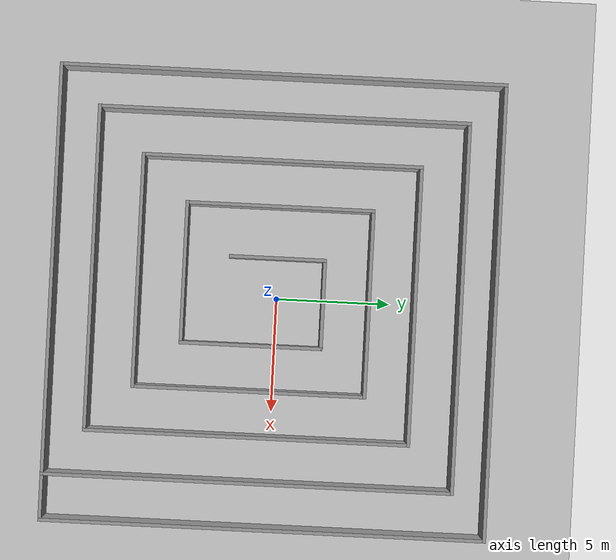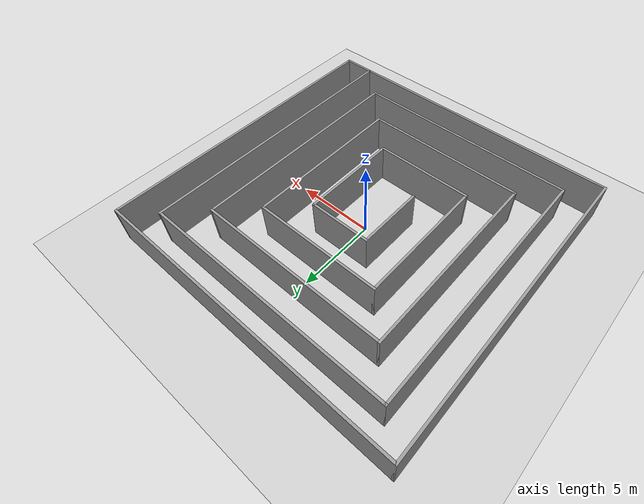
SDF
<sdf version='1.6'>
  <world name='default'>
    <light name='sun' type='directional'>
      <cast_shadows>1</cast_shadows>
      <pose frame=''>0 0 10 0 -0 0</pose>
      <diffuse>0.8 0.8 0.8 1</diffuse>
      <specular>0.1 0.1 0.1 1</specular>
      <attenuation>
        <range>1000</range>
        <constant>0.9</constant>
        <linear>0.01</linear>
        <quadratic>0.001</quadratic>
      </attenuation>
      <direction>-0.5 0.5 -1</direction>
    </light>
    <model name='ground_plane'>
      <static>1</static>
      <link name='link'>
        <collision name='collision'>
          <geometry>
            <plane>
              <normal>0 0 1</normal>
              <size>100 100</size>
            </plane>
          </geometry>
          <surface>
            <friction>
              <ode>
                <mu>100</mu>
                <mu2>50</mu2>
              </ode>
              <torsional>
                <ode/>
              </torsional>
            </friction>
            <contact>
              <ode/>
            </contact>
            <bounce/>
          </surface>
          <max_contacts>10</max_contacts>
        </collision>
        <visual name='visual'>
          <cast_shadows>0</cast_shadows>
          <geometry>
            <plane>
              <normal>0 0 1</normal>
              <size>100 100</size>
            </plane>
          </geometry>
          <material>
            <script>
              <uri>file://media/materials/scripts/gazebo.material</uri>
              <name>Gazebo/Grey</name>
            </script>
          </material>
        </visual>
        <self_collide>0</self_collide>
        <kinematic>0</kinematic>
        <gravity>1</gravity>
      </link>
    </model>
    <gravity>0 0 -9.8</gravity>
    <magnetic_field>6e-06 2.3e-05 -4.2e-05</magnetic_field>
    <atmosphere type='adiabatic'/>
    <physics name='default_physics' default='0' type='ode'>
      <max_step_size>0.001</max_step_size>
      <real_time_factor>1</real_time_factor>
      <real_time_update_rate>1000</real_time_update_rate>
    </physics>
    <scene>
      <ambient>0.4 0.4 0.4 1</ambient>
      <background>0.7 0.7 0.7 1</background>
      <shadows>1</shadows>
    </scene>
    <spherical_coordinates>
      <surface_model>EARTH_WGS84</surface_model>
      <latitude_deg>0</latitude_deg>
      <longitude_deg>0</longitude_deg>
      <elevation>0</elevation>
      <heading_deg>0</heading_deg>
    </spherical_coordinates>
  <model name='my'>
    <pose frame=''>0.152851 -0.159018 0 0 -0 0</pose>
    <link name='Wall_10'>
      <collision name='Wall_10_Collision'>
        <geometry>
          <box>
            <size>10.25 0.15 2.5</size>
          </box>
        </geometry>
        <pose frame=''>0 0 1.25 0 -0 0</pose>
      </collision>
      <visual name='Wall_10_Visual'>
        <pose frame=''>0 0 1.25 0 -0 0</pose>
        <geometry>
          <box>
            <size>10.25 0.15 2.5</size>
          </box>
        </geometry>
        <material>
          <script>
            <uri>file://media/materials/scripts/gazebo.material</uri>
            <name>Gazebo/Grey</name>
          </script>
          <ambient>1 1 1 1</ambient>
        </material>
      </visual>
      <pose frame=''>-1.125 -5.925 0 0 -0 3.14159</pose>
    </link>
    <link name='Wall_11'>
      <collision name='Wall_11_Collision'>
        <geometry>
          <box>
            <size>12.25 0.15 2.5</size>
          </box>
        </geometry>
        <pose frame=''>0 0 1.25 0 -0 0</pose>
      </collision>
      <visual name='Wall_11_Visual'>
        <pose frame=''>0 0 1.25 0 -0 0</pose>
        <geometry>
          <box>
            <size>12.25 0.15 2.5</size>
          </box>
        </geometry>
        <material>
          <script>
            <uri>file://media/materials/scripts/gazebo.material</uri>
            <name>Gazebo/Grey</name>
          </script>
          <ambient>1 1 1 1</ambient>
        </material>
      </visual>
      <pose frame=''>-6.175 0.125 0 0 -0 1.5708</pose>
    </link>
    <link name='Wall_12'>
      <collision name='Wall_12_Collision'>
        <geometry>
          <box>
            <size>12.25 0.15 2.5</size>
          </box>
        </geometry>
        <pose frame=''>0 0 1.25 0 -0 0</pose>
      </collision>
      <visual name='Wall_12_Visual'>
        <pose frame=''>0 0 1.25 0 -0 0</pose>
        <geometry>
          <box>
            <size>12.25 0.15 2.5</size>
          </box>
        </geometry>
        <material>
          <script>
            <uri>file://media/materials/scripts/gazebo.material</uri>
            <name>Gazebo/Grey</name>
          </script>
          <ambient>1 1 1 1</ambient>
        </material>
      </visual>
      <pose frame=''>-0.125 6.175 0 0 -0 0</pose>
    </link>
    <link name='Wall_13'>
      <collision name='Wall_13_Collision'>
        <geometry>
          <box>
            <size>14.25 0.15 2.5</size>
          </box>
        </geometry>
        <pose frame=''>0 0 1.25 0 -0 0</pose>
      </collision>
      <visual name='Wall_13_Visual'>
        <pose frame=''>0 0 1.25 0 -0 0</pose>
        <geometry>
          <box>
            <size>14.25 0.15 2.5</size>
          </box>
        </geometry>
        <material>
          <script>
            <uri>file://media/materials/scripts/gazebo.material</uri>
            <name>Gazebo/Grey</name>
          </script>
          <ambient>1 1 1 1</ambient>
        </material>
      </visual>
      <pose frame=''>5.925 -0.875 0 0 0 -1.5708</pose>
    </link>
    <link name='Wall_14'>
      <collision name='Wall_14_Collision'>
        <geometry>
          <box>
            <size>14.25 0.15 2.5</size>
          </box>
        </geometry>
        <pose frame=''>0 0 1.25 0 -0 0</pose>
      </collision>
      <visual name='Wall_14_Visual'>
        <pose frame=''>0 0 1.25 0 -0 0</pose>
        <geometry>
          <box>
            <size>14.25 0.15 2.5</size>
          </box>
        </geometry>
        <material>
          <script>
            <uri>file://media/materials/scripts/gazebo.material</uri>
            <name>Gazebo/Grey</name>
          </script>
          <ambient>1 1 1 1</ambient>
        </material>
      </visual>
      <pose frame=''>-1.125 -7.925 0 0 -0 3.14159</pose>
    </link>
    <link name='Wall_17'>
      <collision name='Wall_17_Collision'>
        <geometry>
          <box>
            <size>16.25 0.15 2.5</size>
          </box>
        </geometry>
        <pose frame=''>0 0 1.25 0 -0 0</pose>
      </collision>
      <visual name='Wall_17_Visual'>
        <pose frame=''>0 0 1.25 0 -0 0</pose>
        <geometry>
          <box>
            <size>16.25 0.15 2.5</size>
          </box>
        </geometry>
        <material>
          <script>
            <uri>file://media/materials/scripts/gazebo.material</uri>
            <name>Gazebo/Grey</name>
          </script>
          <ambient>1 1 1 1</ambient>
        </material>
      </visual>
      <pose frame=''>-8.175 0.125 0 0 -0 1.5708</pose>
    </link>
    <link name='Wall_18'>
      <collision name='Wall_18_Collision'>
        <geometry>
          <box>
            <size>16.25 0.15 2.5</size>
          </box>
        </geometry>
        <pose frame=''>0 0 1.25 0 -0 0</pose>
      </collision>
      <visual name='Wall_18_Visual'>
        <pose frame=''>0 0 1.25 0 -0 0</pose>
        <geometry>
          <box>
            <size>16.25 0.15 2.5</size>
          </box>
        </geometry>
        <material>
          <script>
            <uri>file://media/materials/scripts/gazebo.material</uri>
            <name>Gazebo/Grey</name>
          </script>
          <ambient>1 1 1 1</ambient>
        </material>
      </visual>
      <pose frame=''>-0.125 8.175 0 0 -0 0</pose>
    </link>
    <link name='Wall_19'>
      <collision name='Wall_19_Collision'>
        <geometry>
          <box>
            <size>18 0.15 2.5</size>
          </box>
        </geometry>
        <pose frame=''>0 0 1.25 0 -0 0</pose>
      </collision>
      <visual name='Wall_19_Visual'>
        <pose frame=''>0 0 1.25 0 -0 0</pose>
        <geometry>
          <box>
            <size>18 0.15 2.5</size>
          </box>
        </geometry>
        <material>
          <script>
            <uri>file://media/materials/scripts/gazebo.material</uri>
            <name>Gazebo/Grey</name>
          </script>
          <ambient>1 1 1 1</ambient>
        </material>
      </visual>
      <pose frame=''>7.925 -0.75 0 0 0 -1.5708</pose>
    </link>
    <link name='Wall_20'>
      <collision name='Wall_20_Collision'>
        <geometry>
          <box>
            <size>18 0.15 2.5</size>
          </box>
        </geometry>
        <pose frame=''>0 0 1.25 0 -0 0</pose>
      </collision>
      <visual name='Wall_20_Visual'>
        <pose frame=''>0 0 1.25 0 -0 0</pose>
        <geometry>
          <box>
            <size>18 0.15 2.5</size>
          </box>
        </geometry>
        <material>
          <script>
            <uri>file://media/materials/scripts/gazebo.material</uri>
            <name>Gazebo/Grey</name>
          </script>
          <ambient>1 1 1 1</ambient>
        </material>
      </visual>
      <pose frame=''>-1 -9.675 0 0 -0 3.14159</pose>
    </link>
    <link name='Wall_21'>
      <collision name='Wall_21_Collision'>
        <geometry>
          <box>
            <size>19.5 0.15 2.5</size>
          </box>
        </geometry>
        <pose frame=''>0 0 1.25 0 -0 0</pose>
      </collision>
      <visual name='Wall_21_Visual'>
        <pose frame=''>0 0 1.25 0 -0 0</pose>
        <geometry>
          <box>
            <size>19.5 0.15 2.5</size>
          </box>
        </geometry>
        <material>
          <script>
            <uri>file://media/materials/scripts/gazebo.material</uri>
            <name>Gazebo/Grey</name>
          </script>
          <ambient>1 1 1 1</ambient>
        </material>
      </visual>
      <pose frame=''>-9.925 0 0 0 -0 1.5708</pose>
    </link>
    <link name='Wall_22'>
      <collision name='Wall_22_Collision'>
        <geometry>
          <box>
            <size>20 0.15 2.5</size>
          </box>
        </geometry>
        <pose frame=''>0 0 1.25 0 -0 0</pose>
      </collision>
      <visual name='Wall_22_Visual'>
        <pose frame=''>0 0 1.25 0 -0 0</pose>
        <geometry>
          <box>
            <size>20 0.15 2.5</size>
          </box>
        </geometry>
        <material>
          <script>
            <uri>file://media/materials/scripts/gazebo.material</uri>
            <name>Gazebo/Grey</name>
          </script>
          <ambient>1 1 1 1</ambient>
        </material>
      </visual>
      <pose frame=''>0 9.675 0 0 -0 0</pose>
    </link>
    <link name='Wall_23'>
      <collision name='Wall_23_Collision'>
        <geometry>
          <box>
            <size>19.5 0.15 2.5</size>
          </box>
        </geometry>
        <pose frame=''>0 0 1.25 0 -0 0</pose>
      </collision>
      <visual name='Wall_23_Visual'>
        <pose frame=''>0 0 1.25 0 -0 0</pose>
        <geometry>
          <box>
            <size>19.5 0.15 2.5</size>
          </box>
        </geometry>
        <material>
          <script>
            <uri>file://media/materials/scripts/gazebo.material</uri>
            <name>Gazebo/Grey</name>
          </script>
          <ambient>1 1 1 1</ambient>
        </material>
      </visual>
      <pose frame=''>9.925 0 0 0 0 -1.5708</pose>
    </link>
    <link name='Wall_24'>
      <collision name='Wall_24_Collision'>
        <geometry>
          <box>
            <size>2.15 0.15 2.5</size>
          </box>
        </geometry>
        <pose frame=''>0 0 1.25 0 -0 0</pose>
      </collision>
      <visual name='Wall_24_Visual'>
        <pose frame=''>0 0 1.25 0 -0 0</pose>
        <geometry>
          <box>
            <size>2.15 0.15 2.5</size>
          </box>
        </geometry>
        <material>
          <script>
            <uri>file://media/materials/scripts/gazebo.material</uri>
            <name>Gazebo/Grey</name>
          </script>
          <ambient>1 1 1 1</ambient>
        </material>
      </visual>
      <pose frame=''>8.925 -9.675 0 0 -0 3.14159</pose>
    </link>
    <link name='Wall_3'>
      <collision name='Wall_3_Collision'>
        <geometry>
          <box>
            <size>4.25 0.15 2.5</size>
          </box>
        </geometry>
        <pose frame=''>0 0 1.25 0 -0 0</pose>
      </collision>
      <visual name='Wall_3_Visual'>
        <pose frame=''>0 0 1.25 0 -0 0</pose>
        <geometry>
          <box>
            <size>4.25 0.15 2.5</size>
          </box>
        </geometry>
        <material>
          <script>
            <uri>file://media/materials/scripts/gazebo.material</uri>
            <name>Gazebo/Grey</name>
          </script>
          <ambient>1 1 1 1</ambient>
        </material>
      </visual>
      <pose frame=''>-1.925 0.125 0 0 -0 1.5708</pose>
    </link>
    <link name='Wall_4'>
      <collision name='Wall_4_Collision'>
        <geometry>
          <box>
            <size>4 0.15 2.5</size>
          </box>
        </geometry>
        <pose frame=''>0 0 1.25 0 -0 0</pose>
      </collision>
      <visual name='Wall_4_Visual'>
        <pose frame=''>0 0 1.25 0 -0 0</pose>
        <geometry>
          <box>
            <size>4 0.15 2.5</size>
          </box>
        </geometry>
        <material>
          <script>
            <uri>file://media/materials/scripts/gazebo.material</uri>
            <name>Gazebo/Grey</name>
          </script>
          <ambient>1 1 1 1</ambient>
        </material>
      </visual>
      <pose frame=''>0 2.175 0 0 -0 0</pose>
    </link>
    <link name='Wall_5'>
      <collision name='Wall_5_Collision'>
        <geometry>
          <box>
            <size>6.25 0.15 2.5</size>
          </box>
        </geometry>
        <pose frame=''>0 0 1.25 0 -0 0</pose>
      </collision>
      <visual name='Wall_5_Visual'>
        <pose frame=''>0 0 1.25 0 -0 0</pose>
        <geometry>
          <box>
            <size>6.25 0.15 2.5</size>
          </box>
        </geometry>
        <material>
          <script>
            <uri>file://media/materials/scripts/gazebo.material</uri>
            <name>Gazebo/Grey</name>
          </script>
          <ambient>1 1 1 1</ambient>
        </material>
      </visual>
      <pose frame=''>1.925 -0.875 0 0 0 -1.5708</pose>
    </link>
    <link name='Wall_6'>
      <collision name='Wall_6_Collision'>
        <geometry>
          <box>
            <size>6.25 0.15 2.5</size>
          </box>
        </geometry>
        <pose frame=''>0 0 1.25 0 -0 0</pose>
      </collision>
      <visual name='Wall_6_Visual'>
        <pose frame=''>0 0 1.25 0 -0 0</pose>
        <geometry>
          <box>
            <size>6.25 0.15 2.5</size>
          </box>
        </geometry>
        <material>
          <script>
            <uri>file://media/materials/scripts/gazebo.material</uri>
            <name>Gazebo/Grey</name>
          </script>
          <ambient>1 1 1 1</ambient>
        </material>
      </visual>
      <pose frame=''>-1.125 -3.925 0 0 -0 3.14159</pose>
    </link>
    <link name='Wall_7'>
      <collision name='Wall_7_Collision'>
        <geometry>
          <box>
            <size>8.25 0.15 2.5</size>
          </box>
        </geometry>
        <pose frame=''>0 0 1.25 0 -0 0</pose>
      </collision>
      <visual name='Wall_7_Visual'>
        <pose frame=''>0 0 1.25 0 -0 0</pose>
        <geometry>
          <box>
            <size>8.25 0.15 2.5</size>
          </box>
        </geometry>
        <material>
          <script>
            <uri>file://media/materials/scripts/gazebo.material</uri>
            <name>Gazebo/Grey</name>
          </script>
          <ambient>1 1 1 1</ambient>
        </material>
      </visual>
      <pose frame=''>-4.175 0.125 0 0 -0 1.5708</pose>
    </link>
    <link name='Wall_8'>
      <collision name='Wall_8_Collision'>
        <geometry>
          <box>
            <size>8.25 0.15 2.5</size>
          </box>
        </geometry>
        <pose frame=''>0 0 1.25 0 -0 0</pose>
      </collision>
      <visual name='Wall_8_Visual'>
        <pose frame=''>0 0 1.25 0 -0 0</pose>
        <geometry>
          <box>
            <size>8.25 0.15 2.5</size>
          </box>
        </geometry>
        <material>
          <script>
            <uri>file://media/materials/scripts/gazebo.material</uri>
            <name>Gazebo/Grey</name>
          </script>
          <ambient>1 1 1 1</ambient>
        </material>
      </visual>
      <pose frame=''>-0.125 4.175 0 0 -0 0</pose>
    </link>
    <link name='Wall_9'>
      <collision name='Wall_9_Collision'>
        <geometry>
          <box>
            <size>10.25 0.15 2.5</size>
          </box>
        </geometry>
        <pose frame=''>0 0 1.25 0 -0 0</pose>
      </collision>
      <visual name='Wall_9_Visual'>
        <pose frame=''>0 0 1.25 0 -0 0</pose>
        <geometry>
          <box>
            <size>10.25 0.15 2.5</size>
          </box>
        </geometry>
        <material>
          <script>
            <uri>file://media/materials/scripts/gazebo.material</uri>
            <name>Gazebo/Grey</name>
          </script>
          <ambient>1 1 1 1</ambient>
        </material>
      </visual>
      <pose frame=''>3.925 -0.875 0 0 0 -1.5708</pose>
    </link>
    <static>1</static>
  </model>
    <gui fullscreen='0'>
      <camera name='user_camera'>
        <pose frame=''>16.2109 1.92646 50.3068 0 1.16364 -3.039</pose>
        <view_controller>orbit</view_controller>
        <projection_type>perspective</projection_type>
      </camera>
    </gui>
  </world>
</sdf>
